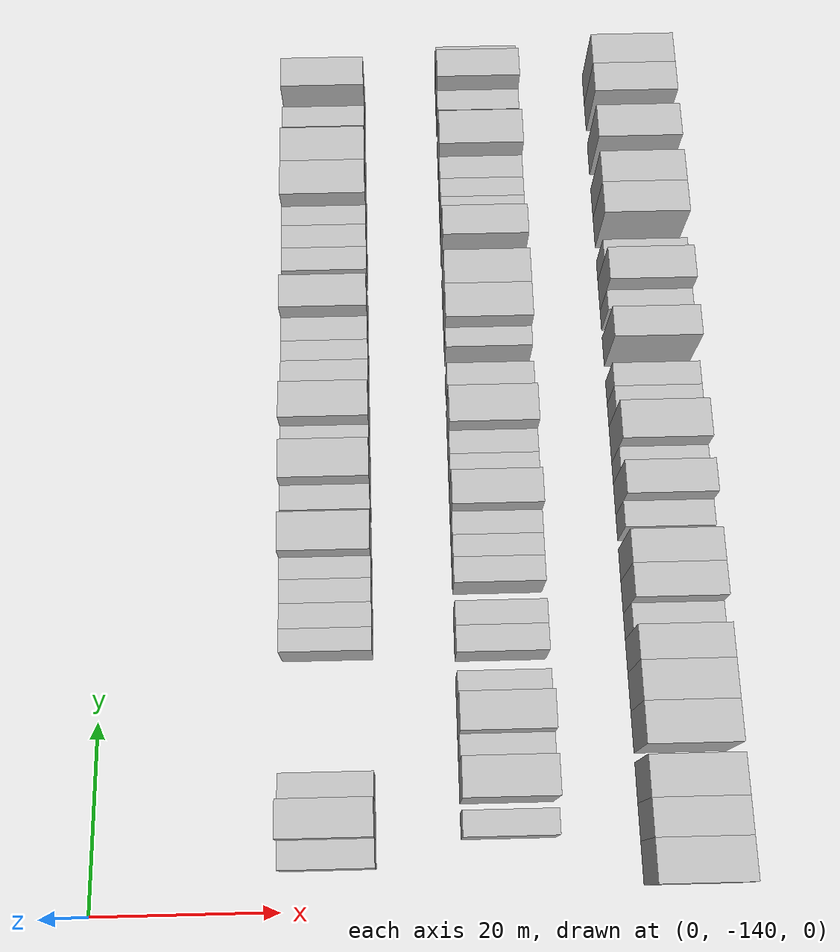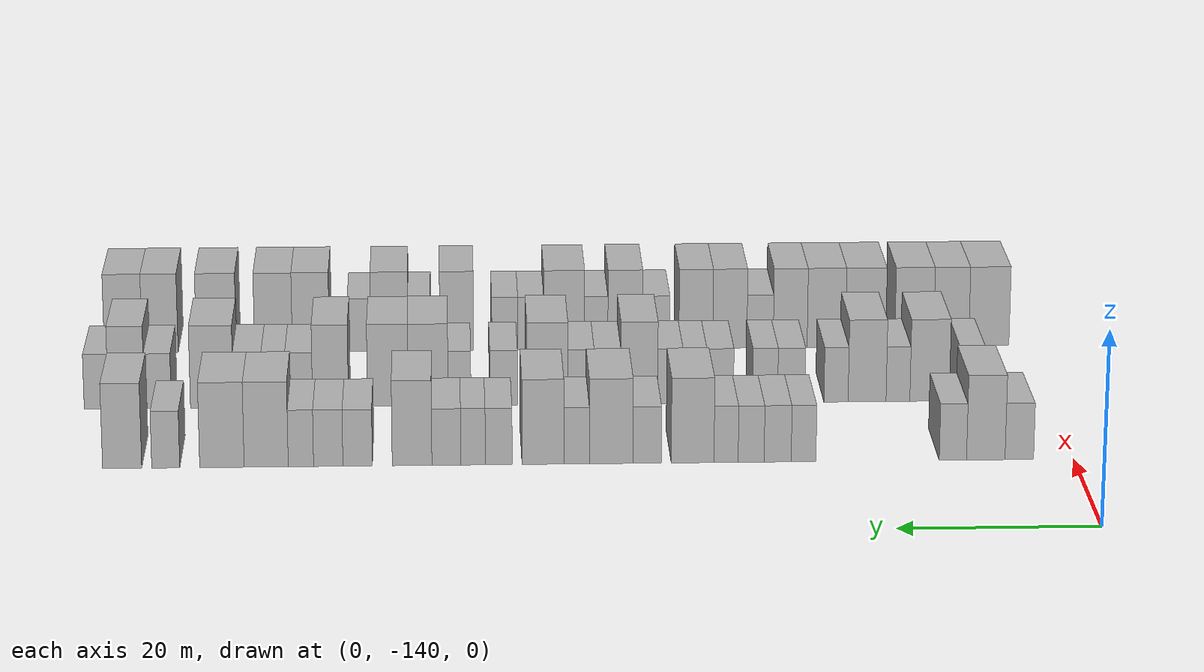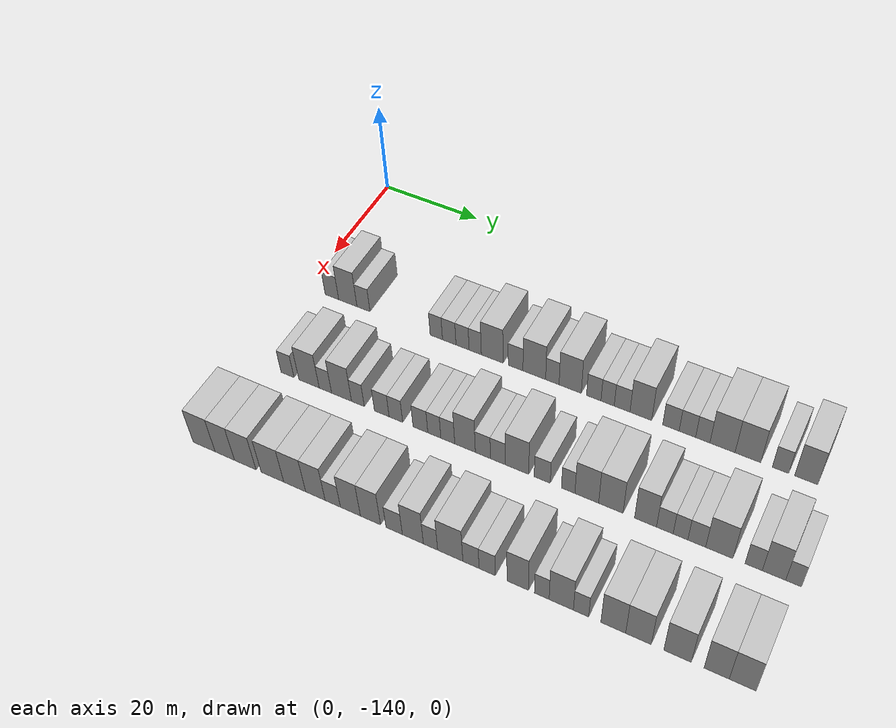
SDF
<sdf version="1.6">
 <world name="default">
  <model name="building_25">
   <static>1</static>
   <pose>25.0000 -134.4918 0 0.000000 0.000000 0.000000</pose>
   <link name="link">
    <pose>0 0 3.00 0 0 0</pose>
    <collision name="collision"><geometry><box><size>10.0000 2.9048 6.0000</size></box></geometry></collision>
    <visual name="visual">
     <cast_shadows>0</cast_shadows>
     <geometry><box><size>10.0000 2.9048 6.0000</size></box></geometry>
     <material>
      <script>
       <uri>model://HANNAS_wall/materials/scripts</uri>
       <uri>model://HANNAS_wall/materials/textures</uri>
       <name>vrc/HANNAS_wall</name>
      </script>
     </material>
    </visual>
   </link>
  </model>
  <model name="building_26">
   <static>1</static>
   <pose>25.0000 -131.0836 0 0.000000 0.000000 0.000000</pose>
   <link name="link">
    <pose>0 0 4.50 0 0 0</pose>
    <collision name="collision"><geometry><box><size>10.0000 3.9116 9.0000</size></box></geometry></collision>
    <visual name="visual">
     <cast_shadows>0</cast_shadows>
     <geometry><box><size>10.0000 3.9116 9.0000</size></box></geometry>
     <material>
      <script>
       <uri>model://HANNAS_wall/materials/scripts</uri>
       <uri>model://HANNAS_wall/materials/textures</uri>
       <name>vrc/HANNAS_wall</name>
      </script>
     </material>
    </visual>
   </link>
  </model>
  <model name="building_27">
   <static>1</static>
   <pose>25.0000 -127.7431 0 0.000000 0.000000 0.000000</pose>
   <link name="link">
    <pose>0 0 3.00 0 0 0</pose>
    <collision name="collision"><geometry><box><size>10.0000 2.7693 6.0000</size></box></geometry></collision>
    <visual name="visual">
     <cast_shadows>0</cast_shadows>
     <geometry><box><size>10.0000 2.7693 6.0000</size></box></geometry>
     <material>
      <script>
       <uri>model://HANNAS_wall/materials/scripts</uri>
       <uri>model://HANNAS_wall/materials/textures</uri>
       <name>vrc/HANNAS_wall</name>
      </script>
     </material>
    </visual>
   </link>
  </model>
  <model name="building_28">
   <static>1</static>
   <pose>25.0000 -112.5981 0 0.000000 0.000000 0.000000</pose>
   <link name="link">
    <pose>0 0 3.00 0 0 0</pose>
    <collision name="collision"><geometry><box><size>10.0000 2.5069 6.0000</size></box></geometry></collision>
    <visual name="visual">
     <cast_shadows>0</cast_shadows>
     <geometry><box><size>10.0000 2.5069 6.0000</size></box></geometry>
     <material>
      <script>
       <uri>model://HANNAS_wall/materials/scripts</uri>
       <uri>model://HANNAS_wall/materials/textures</uri>
       <name>vrc/HANNAS_wall</name>
      </script>
     </material>
    </visual>
   </link>
  </model>
  <model name="building_29">
   <static>1</static>
   <pose>25.0000 -109.9753 0 0.000000 0.000000 0.000000</pose>
   <link name="link">
    <pose>0 0 3.00 0 0 0</pose>
    <collision name="collision"><geometry><box><size>10.0000 2.7387 6.0000</size></box></geometry></collision>
    <visual name="visual">
     <cast_shadows>0</cast_shadows>
     <geometry><box><size>10.0000 2.7387 6.0000</size></box></geometry>
     <material>
      <script>
       <uri>model://HANNAS_wall/materials/scripts</uri>
       <uri>model://HANNAS_wall/materials/textures</uri>
       <name>vrc/HANNAS_wall</name>
      </script>
     </material>
    </visual>
   </link>
  </model>
  <model name="building_30">
   <static>1</static>
   <pose>25.0000 -107.2891 0 0.000000 0.000000 0.000000</pose>
   <link name="link">
    <pose>0 0 3.00 0 0 0</pose>
    <collision name="collision"><geometry><box><size>10.0000 2.6337 6.0000</size></box></geometry></collision>
    <visual name="visual">
     <cast_shadows>0</cast_shadows>
     <geometry><box><size>10.0000 2.6337 6.0000</size></box></geometry>
     <material>
      <script>
       <uri>model://HANNAS_wall/materials/scripts</uri>
       <uri>model://HANNAS_wall/materials/textures</uri>
       <name>vrc/HANNAS_wall</name>
      </script>
     </material>
    </visual>
   </link>
  </model>
  <model name="building_31">
   <static>1</static>
   <pose>25.0000 -104.7487 0 0.000000 0.000000 0.000000</pose>
   <link name="link">
    <pose>0 0 3.00 0 0 0</pose>
    <collision name="collision"><geometry><box><size>10.0000 2.4472 6.0000</size></box></geometry></collision>
    <visual name="visual">
     <cast_shadows>0</cast_shadows>
     <geometry><box><size>10.0000 2.4472 6.0000</size></box></geometry>
     <material>
      <script>
       <uri>model://HANNAS_wall/materials/scripts</uri>
       <uri>model://HANNAS_wall/materials/textures</uri>
       <name>vrc/HANNAS_wall</name>
      </script>
     </material>
    </visual>
   </link>
  </model>
  <model name="building_32">
   <static>1</static>
   <pose>25.0000 -101.3628 0 0.000000 0.000000 0.000000</pose>
   <link name="link">
    <pose>0 0 4.50 0 0 0</pose>
    <collision name="collision"><geometry><box><size>10.0000 4.3246 9.0000</size></box></geometry></collision>
    <visual name="visual">
     <cast_shadows>0</cast_shadows>
     <geometry><box><size>10.0000 4.3246 9.0000</size></box></geometry>
     <material>
      <script>
       <uri>model://HANNAS_wall/materials/scripts</uri>
       <uri>model://HANNAS_wall/materials/textures</uri>
       <name>vrc/HANNAS_wall</name>
      </script>
     </material>
    </visual>
   </link>
  </model>
  <model name="building_33">
   <static>1</static>
   <pose>25.0000 -96.7619 0 0.000000 0.000000 0.000000</pose>
   <link name="link">
    <pose>0 0 3.00 0 0 0</pose>
    <collision name="collision"><geometry><box><size>10.0000 2.8772 6.0000</size></box></geometry></collision>
    <visual name="visual">
     <cast_shadows>0</cast_shadows>
     <geometry><box><size>10.0000 2.8772 6.0000</size></box></geometry>
     <material>
      <script>
       <uri>model://HANNAS_wall/materials/scripts</uri>
       <uri>model://HANNAS_wall/materials/textures</uri>
       <name>vrc/HANNAS_wall</name>
      </script>
     </material>
    </visual>
   </link>
  </model>
  <model name="building_34">
   <static>1</static>
   <pose>25.0000 -93.1212 0 0.000000 0.000000 0.000000</pose>
   <link name="link">
    <pose>0 0 4.50 0 0 0</pose>
    <collision name="collision"><geometry><box><size>10.0000 4.4043 9.0000</size></box></geometry></collision>
    <visual name="visual">
     <cast_shadows>0</cast_shadows>
     <geometry><box><size>10.0000 4.4043 9.0000</size></box></geometry>
     <material>
      <script>
       <uri>model://HANNAS_wall/materials/scripts</uri>
       <uri>model://HANNAS_wall/materials/textures</uri>
       <name>vrc/HANNAS_wall</name>
      </script>
     </material>
    </visual>
   </link>
  </model>
  <model name="building_35">
   <static>1</static>
   <pose>25.0000 -89.6318 0 0.000000 0.000000 0.000000</pose>
   <link name="link">
    <pose>0 0 3.00 0 0 0</pose>
    <collision name="collision"><geometry><box><size>10.0000 2.5744 6.0000</size></box></geometry></collision>
    <visual name="visual">
     <cast_shadows>0</cast_shadows>
     <geometry><box><size>10.0000 2.5744 6.0000</size></box></geometry>
     <material>
      <script>
       <uri>model://HANNAS_wall/materials/scripts</uri>
       <uri>model://HANNAS_wall/materials/textures</uri>
       <name>vrc/HANNAS_wall</name>
      </script>
     </material>
    </visual>
   </link>
  </model>
  <model name="building_36">
   <static>1</static>
   <pose>25.0000 -86.2331 0 0.000000 0.000000 0.000000</pose>
   <link name="link">
    <pose>0 0 4.50 0 0 0</pose>
    <collision name="collision"><geometry><box><size>10.0000 4.2231 9.0000</size></box></geometry></collision>
    <visual name="visual">
     <cast_shadows>0</cast_shadows>
     <geometry><box><size>10.0000 4.2231 9.0000</size></box></geometry>
     <material>
      <script>
       <uri>model://HANNAS_wall/materials/scripts</uri>
       <uri>model://HANNAS_wall/materials/textures</uri>
       <name>vrc/HANNAS_wall</name>
      </script>
     </material>
    </visual>
   </link>
  </model>
  <model name="building_37">
   <static>1</static>
   <pose>25.0000 -81.7671 0 0.000000 0.000000 0.000000</pose>
   <link name="link">
    <pose>0 0 3.00 0 0 0</pose>
    <collision name="collision"><geometry><box><size>10.0000 2.7089 6.0000</size></box></geometry></collision>
    <visual name="visual">
     <cast_shadows>0</cast_shadows>
     <geometry><box><size>10.0000 2.7089 6.0000</size></box></geometry>
     <material>
      <script>
       <uri>model://HANNAS_wall/materials/scripts</uri>
       <uri>model://HANNAS_wall/materials/textures</uri>
       <name>vrc/HANNAS_wall</name>
      </script>
     </material>
    </visual>
   </link>
  </model>
  <model name="building_38">
   <static>1</static>
   <pose>25.0000 -79.1768 0 0.000000 0.000000 0.000000</pose>
   <link name="link">
    <pose>0 0 3.00 0 0 0</pose>
    <collision name="collision"><geometry><box><size>10.0000 2.4715 6.0000</size></box></geometry></collision>
    <visual name="visual">
     <cast_shadows>0</cast_shadows>
     <geometry><box><size>10.0000 2.4715 6.0000</size></box></geometry>
     <material>
      <script>
       <uri>model://HANNAS_wall/materials/scripts</uri>
       <uri>model://HANNAS_wall/materials/textures</uri>
       <name>vrc/HANNAS_wall</name>
      </script>
     </material>
    </visual>
   </link>
  </model>
  <model name="building_39">
   <static>1</static>
   <pose>25.0000 -76.4814 0 0.000000 0.000000 0.000000</pose>
   <link name="link">
    <pose>0 0 3.00 0 0 0</pose>
    <collision name="collision"><geometry><box><size>10.0000 2.9194 6.0000</size></box></geometry></collision>
    <visual name="visual">
     <cast_shadows>0</cast_shadows>
     <geometry><box><size>10.0000 2.9194 6.0000</size></box></geometry>
     <material>
      <script>
       <uri>model://HANNAS_wall/materials/scripts</uri>
       <uri>model://HANNAS_wall/materials/textures</uri>
       <name>vrc/HANNAS_wall</name>
      </script>
     </material>
    </visual>
   </link>
  </model>
  <model name="building_40">
   <static>1</static>
   <pose>25.0000 -73.0210 0 0.000000 0.000000 0.000000</pose>
   <link name="link">
    <pose>0 0 4.50 0 0 0</pose>
    <collision name="collision"><geometry><box><size>10.0000 4.0014 9.0000</size></box></geometry></collision>
    <visual name="visual">
     <cast_shadows>0</cast_shadows>
     <geometry><box><size>10.0000 4.0014 9.0000</size></box></geometry>
     <material>
      <script>
       <uri>model://HANNAS_wall/materials/scripts</uri>
       <uri>model://HANNAS_wall/materials/textures</uri>
       <name>vrc/HANNAS_wall</name>
      </script>
     </material>
    </visual>
   </link>
  </model>
  <model name="building_41">
   <static>1</static>
   <pose>25.0000 -67.5345 0 0.000000 0.000000 0.000000</pose>
   <link name="link">
    <pose>0 0 3.00 0 0 0</pose>
    <collision name="collision"><geometry><box><size>10.0000 2.9716 6.0000</size></box></geometry></collision>
    <visual name="visual">
     <cast_shadows>0</cast_shadows>
     <geometry><box><size>10.0000 2.9716 6.0000</size></box></geometry>
     <material>
      <script>
       <uri>model://HANNAS_wall/materials/scripts</uri>
       <uri>model://HANNAS_wall/materials/textures</uri>
       <name>vrc/HANNAS_wall</name>
      </script>
     </material>
    </visual>
   </link>
  </model>
  <model name="building_42">
   <static>1</static>
   <pose>25.0000 -64.5715 0 0.000000 0.000000 0.000000</pose>
   <link name="link">
    <pose>0 0 3.00 0 0 0</pose>
    <collision name="collision"><geometry><box><size>10.0000 2.9545 6.0000</size></box></geometry></collision>
    <visual name="visual">
     <cast_shadows>0</cast_shadows>
     <geometry><box><size>10.0000 2.9545 6.0000</size></box></geometry>
     <material>
      <script>
       <uri>model://HANNAS_wall/materials/scripts</uri>
       <uri>model://HANNAS_wall/materials/textures</uri>
       <name>vrc/HANNAS_wall</name>
      </script>
     </material>
    </visual>
   </link>
  </model>
  <model name="building_43">
   <static>1</static>
   <pose>25.0000 -61.8195 0 0.000000 0.000000 0.000000</pose>
   <link name="link">
    <pose>0 0 3.00 0 0 0</pose>
    <collision name="collision"><geometry><box><size>10.0000 2.5494 6.0000</size></box></geometry></collision>
    <visual name="visual">
     <cast_shadows>0</cast_shadows>
     <geometry><box><size>10.0000 2.5494 6.0000</size></box></geometry>
     <material>
      <script>
       <uri>model://HANNAS_wall/materials/scripts</uri>
       <uri>model://HANNAS_wall/materials/textures</uri>
       <name>vrc/HANNAS_wall</name>
      </script>
     </material>
    </visual>
   </link>
  </model>
  <model name="building_44">
   <static>1</static>
   <pose>25.0000 -58.3262 0 0.000000 0.000000 0.000000</pose>
   <link name="link">
    <pose>0 0 4.50 0 0 0</pose>
    <collision name="collision"><geometry><box><size>10.0000 4.4372 9.0000</size></box></geometry></collision>
    <visual name="visual">
     <cast_shadows>0</cast_shadows>
     <geometry><box><size>10.0000 4.4372 9.0000</size></box></geometry>
     <material>
      <script>
       <uri>model://HANNAS_wall/materials/scripts</uri>
       <uri>model://HANNAS_wall/materials/textures</uri>
       <name>vrc/HANNAS_wall</name>
      </script>
     </material>
    </visual>
   </link>
  </model>
  <model name="building_45">
   <static>1</static>
   <pose>25.0000 -53.8707 0 0.000000 0.000000 0.000000</pose>
   <link name="link">
    <pose>0 0 4.50 0 0 0</pose>
    <collision name="collision"><geometry><box><size>10.0000 4.4738 9.0000</size></box></geometry></collision>
    <visual name="visual">
     <cast_shadows>0</cast_shadows>
     <geometry><box><size>10.0000 4.4738 9.0000</size></box></geometry>
     <material>
      <script>
       <uri>model://HANNAS_wall/materials/scripts</uri>
       <uri>model://HANNAS_wall/materials/textures</uri>
       <name>vrc/HANNAS_wall</name>
      </script>
     </material>
    </visual>
   </link>
  </model>
  <model name="building_46">
   <static>1</static>
   <pose>25.0000 -48.2226 0 0.000000 0.000000 0.000000</pose>
   <link name="link">
    <pose>0 0 3.00 0 0 0</pose>
    <collision name="collision"><geometry><box><size>10.0000 2.8224 6.0000</size></box></geometry></collision>
    <visual name="visual">
     <cast_shadows>0</cast_shadows>
     <geometry><box><size>10.0000 2.8224 6.0000</size></box></geometry>
     <material>
      <script>
       <uri>model://HANNAS_wall/materials/scripts</uri>
       <uri>model://HANNAS_wall/materials/textures</uri>
       <name>vrc/HANNAS_wall</name>
      </script>
     </material>
    </visual>
   </link>
  </model>
  <model name="building_47">
   <static>1</static>
   <pose>25.0000 -43.8459 0 0.000000 0.000000 0.000000</pose>
   <link name="link">
    <pose>0 0 4.50 0 0 0</pose>
    <collision name="collision"><geometry><box><size>10.0000 3.9311 9.0000</size></box></geometry></collision>
    <visual name="visual">
     <cast_shadows>0</cast_shadows>
     <geometry><box><size>10.0000 3.9311 9.0000</size></box></geometry>
     <material>
      <script>
       <uri>model://HANNAS_wall/materials/scripts</uri>
       <uri>model://HANNAS_wall/materials/textures</uri>
       <name>vrc/HANNAS_wall</name>
      </script>
     </material>
    </visual>
   </link>
  </model>
  <model name="building_150">
   <static>1</static>
   <pose>44.0000 -131.8340 0 0.000000 0.000000 0.000000</pose>
   <link name="link">
    <pose>0 0 3.00 0 0 0</pose>
    <collision name="collision"><geometry><box><size>10.0000 2.6657 6.0000</size></box></geometry></collision>
    <visual name="visual">
     <cast_shadows>0</cast_shadows>
     <geometry><box><size>10.0000 2.6657 6.0000</size></box></geometry>
     <material>
      <script>
       <uri>model://HANNAS_wall/materials/scripts</uri>
       <uri>model://HANNAS_wall/materials/textures</uri>
       <name>vrc/HANNAS_wall</name>
      </script>
     </material>
    </visual>
   </link>
  </model>
  <model name="building_151">
   <static>1</static>
   <pose>44.0000 -127.4227 0 0.000000 0.000000 0.000000</pose>
   <link name="link">
    <pose>0 0 4.50 0 0 0</pose>
    <collision name="collision"><geometry><box><size>10.0000 4.1570 9.0000</size></box></geometry></collision>
    <visual name="visual">
     <cast_shadows>0</cast_shadows>
     <geometry><box><size>10.0000 4.1570 9.0000</size></box></geometry>
     <material>
      <script>
       <uri>model://HANNAS_wall/materials/scripts</uri>
       <uri>model://HANNAS_wall/materials/textures</uri>
       <name>vrc/HANNAS_wall</name>
      </script>
     </material>
    </visual>
   </link>
  </model>
  <model name="building_152">
   <static>1</static>
   <pose>44.0000 -124.0861 0 0.000000 0.000000 0.000000</pose>
   <link name="link">
    <pose>0 0 3.00 0 0 0</pose>
    <collision name="collision"><geometry><box><size>10.0000 2.5161 6.0000</size></box></geometry></collision>
    <visual name="visual">
     <cast_shadows>0</cast_shadows>
     <geometry><box><size>10.0000 2.5161 6.0000</size></box></geometry>
     <material>
      <script>
       <uri>model://HANNAS_wall/materials/scripts</uri>
       <uri>model://HANNAS_wall/materials/textures</uri>
       <name>vrc/HANNAS_wall</name>
      </script>
     </material>
    </visual>
   </link>
  </model>
  <model name="building_153">
   <static>1</static>
   <pose>44.0000 -120.8262 0 0.000000 0.000000 0.000000</pose>
   <link name="link">
    <pose>0 0 4.50 0 0 0</pose>
    <collision name="collision"><geometry><box><size>10.0000 4.0037 9.0000</size></box></geometry></collision>
    <visual name="visual">
     <cast_shadows>0</cast_shadows>
     <geometry><box><size>10.0000 4.0037 9.0000</size></box></geometry>
     <material>
      <script>
       <uri>model://HANNAS_wall/materials/scripts</uri>
       <uri>model://HANNAS_wall/materials/textures</uri>
       <name>vrc/HANNAS_wall</name>
      </script>
     </material>
    </visual>
   </link>
  </model>
  <model name="building_154">
   <static>1</static>
   <pose>44.0000 -117.5496 0 0.000000 0.000000 0.000000</pose>
   <link name="link">
    <pose>0 0 3.00 0 0 0</pose>
    <collision name="collision"><geometry><box><size>10.0000 2.5495 6.0000</size></box></geometry></collision>
    <visual name="visual">
     <cast_shadows>0</cast_shadows>
     <geometry><box><size>10.0000 2.5495 6.0000</size></box></geometry>
     <material>
      <script>
       <uri>model://HANNAS_wall/materials/scripts</uri>
       <uri>model://HANNAS_wall/materials/textures</uri>
       <name>vrc/HANNAS_wall</name>
      </script>
     </material>
    </visual>
   </link>
  </model>
  <model name="building_155">
   <static>1</static>
   <pose>44.0000 -112.8302 0 0.000000 0.000000 0.000000</pose>
   <link name="link">
    <pose>0 0 3.00 0 0 0</pose>
    <collision name="collision"><geometry><box><size>10.0000 2.8893 6.0000</size></box></geometry></collision>
    <visual name="visual">
     <cast_shadows>0</cast_shadows>
     <geometry><box><size>10.0000 2.8893 6.0000</size></box></geometry>
     <material>
      <script>
       <uri>model://HANNAS_wall/materials/scripts</uri>
       <uri>model://HANNAS_wall/materials/textures</uri>
       <name>vrc/HANNAS_wall</name>
      </script>
     </material>
    </visual>
   </link>
  </model>
  <model name="building_156">
   <static>1</static>
   <pose>44.0000 -110.0591 0 0.000000 0.000000 0.000000</pose>
   <link name="link">
    <pose>0 0 3.00 0 0 0</pose>
    <collision name="collision"><geometry><box><size>10.0000 2.6530 6.0000</size></box></geometry></collision>
    <visual name="visual">
     <cast_shadows>0</cast_shadows>
     <geometry><box><size>10.0000 2.6530 6.0000</size></box></geometry>
     <material>
      <script>
       <uri>model://HANNAS_wall/materials/scripts</uri>
       <uri>model://HANNAS_wall/materials/textures</uri>
       <name>vrc/HANNAS_wall</name>
      </script>
     </material>
    </visual>
   </link>
  </model>
  <model name="building_157">
   <static>1</static>
   <pose>44.0000 -105.3105 0 0.000000 0.000000 0.000000</pose>
   <link name="link">
    <pose>0 0 3.00 0 0 0</pose>
    <collision name="collision"><geometry><box><size>10.0000 2.8441 6.0000</size></box></geometry></collision>
    <visual name="visual">
     <cast_shadows>0</cast_shadows>
     <geometry><box><size>10.0000 2.8441 6.0000</size></box></geometry>
     <material>
      <script>
       <uri>model://HANNAS_wall/materials/scripts</uri>
       <uri>model://HANNAS_wall/materials/textures</uri>
       <name>vrc/HANNAS_wall</name>
      </script>
     </material>
    </visual>
   </link>
  </model>
  <model name="building_158">
   <static>1</static>
   <pose>44.0000 -102.6405 0 0.000000 0.000000 0.000000</pose>
   <link name="link">
    <pose>0 0 3.00 0 0 0</pose>
    <collision name="collision"><geometry><box><size>10.0000 2.4960 6.0000</size></box></geometry></collision>
    <visual name="visual">
     <cast_shadows>0</cast_shadows>
     <geometry><box><size>10.0000 2.4960 6.0000</size></box></geometry>
     <material>
      <script>
       <uri>model://HANNAS_wall/materials/scripts</uri>
       <uri>model://HANNAS_wall/materials/textures</uri>
       <name>vrc/HANNAS_wall</name>
      </script>
     </material>
    </visual>
   </link>
  </model>
  <model name="building_159">
   <static>1</static>
   <pose>44.0000 -100.0737 0 0.000000 0.000000 0.000000</pose>
   <link name="link">
    <pose>0 0 3.00 0 0 0</pose>
    <collision name="collision"><geometry><box><size>10.0000 2.6376 6.0000</size></box></geometry></collision>
    <visual name="visual">
     <cast_shadows>0</cast_shadows>
     <geometry><box><size>10.0000 2.6376 6.0000</size></box></geometry>
     <material>
      <script>
       <uri>model://HANNAS_wall/materials/scripts</uri>
       <uri>model://HANNAS_wall/materials/textures</uri>
       <name>vrc/HANNAS_wall</name>
      </script>
     </material>
    </visual>
   </link>
  </model>
  <model name="building_160">
   <static>1</static>
   <pose>44.0000 -96.8140 0 0.000000 0.000000 0.000000</pose>
   <link name="link">
    <pose>0 0 4.50 0 0 0</pose>
    <collision name="collision"><geometry><box><size>10.0000 3.8818 9.0000</size></box></geometry></collision>
    <visual name="visual">
     <cast_shadows>0</cast_shadows>
     <geometry><box><size>10.0000 3.8818 9.0000</size></box></geometry>
     <material>
      <script>
       <uri>model://HANNAS_wall/materials/scripts</uri>
       <uri>model://HANNAS_wall/materials/textures</uri>
       <name>vrc/HANNAS_wall</name>
      </script>
     </material>
    </visual>
   </link>
  </model>
  <model name="building_161">
   <static>1</static>
   <pose>44.0000 -93.4667 0 0.000000 0.000000 0.000000</pose>
   <link name="link">
    <pose>0 0 3.00 0 0 0</pose>
    <collision name="collision"><geometry><box><size>10.0000 2.8129 6.0000</size></box></geometry></collision>
    <visual name="visual">
     <cast_shadows>0</cast_shadows>
     <geometry><box><size>10.0000 2.8129 6.0000</size></box></geometry>
     <material>
      <script>
       <uri>model://HANNAS_wall/materials/scripts</uri>
       <uri>model://HANNAS_wall/materials/textures</uri>
       <name>vrc/HANNAS_wall</name>
      </script>
     </material>
    </visual>
   </link>
  </model>
  <model name="building_162">
   <static>1</static>
   <pose>44.0000 -90.6843 0 0.000000 0.000000 0.000000</pose>
   <link name="link">
    <pose>0 0 3.00 0 0 0</pose>
    <collision name="collision"><geometry><box><size>10.0000 2.7520 6.0000</size></box></geometry></collision>
    <visual name="visual">
     <cast_shadows>0</cast_shadows>
     <geometry><box><size>10.0000 2.7520 6.0000</size></box></geometry>
     <material>
      <script>
       <uri>model://HANNAS_wall/materials/scripts</uri>
       <uri>model://HANNAS_wall/materials/textures</uri>
       <name>vrc/HANNAS_wall</name>
      </script>
     </material>
    </visual>
   </link>
  </model>
  <model name="building_163">
   <static>1</static>
   <pose>44.0000 -87.1613 0 0.000000 0.000000 0.000000</pose>
   <link name="link">
    <pose>0 0 4.50 0 0 0</pose>
    <collision name="collision"><geometry><box><size>10.0000 4.2940 9.0000</size></box></geometry></collision>
    <visual name="visual">
     <cast_shadows>0</cast_shadows>
     <geometry><box><size>10.0000 4.2940 9.0000</size></box></geometry>
     <material>
      <script>
       <uri>model://HANNAS_wall/materials/scripts</uri>
       <uri>model://HANNAS_wall/materials/textures</uri>
       <name>vrc/HANNAS_wall</name>
      </script>
     </material>
    </visual>
   </link>
  </model>
  <model name="building_164">
   <static>1</static>
   <pose>44.0000 -82.5658 0 0.000000 0.000000 0.000000</pose>
   <link name="link">
    <pose>0 0 3.00 0 0 0</pose>
    <collision name="collision"><geometry><box><size>10.0000 2.8969 6.0000</size></box></geometry></collision>
    <visual name="visual">
     <cast_shadows>0</cast_shadows>
     <geometry><box><size>10.0000 2.8969 6.0000</size></box></geometry>
     <material>
      <script>
       <uri>model://HANNAS_wall/materials/scripts</uri>
       <uri>model://HANNAS_wall/materials/textures</uri>
       <name>vrc/HANNAS_wall</name>
      </script>
     </material>
    </visual>
   </link>
  </model>
  <model name="building_165">
   <static>1</static>
   <pose>44.0000 -77.9173 0 0.000000 0.000000 0.000000</pose>
   <link name="link">
    <pose>0 0 3.00 0 0 0</pose>
    <collision name="collision"><geometry><box><size>10.0000 2.4003 6.0000</size></box></geometry></collision>
    <visual name="visual">
     <cast_shadows>0</cast_shadows>
     <geometry><box><size>10.0000 2.4003 6.0000</size></box></geometry>
     <material>
      <script>
       <uri>model://HANNAS_wall/materials/scripts</uri>
       <uri>model://HANNAS_wall/materials/textures</uri>
       <name>vrc/HANNAS_wall</name>
      </script>
     </material>
    </visual>
   </link>
  </model>
  <model name="building_166">
   <static>1</static>
   <pose>44.0000 -74.6192 0 0.000000 0.000000 0.000000</pose>
   <link name="link">
    <pose>0 0 4.50 0 0 0</pose>
    <collision name="collision"><geometry><box><size>10.0000 4.1958 9.0000</size></box></geometry></collision>
    <visual name="visual">
     <cast_shadows>0</cast_shadows>
     <geometry><box><size>10.0000 4.1958 9.0000</size></box></geometry>
     <material>
      <script>
       <uri>model://HANNAS_wall/materials/scripts</uri>
       <uri>model://HANNAS_wall/materials/textures</uri>
       <name>vrc/HANNAS_wall</name>
      </script>
     </material>
    </visual>
   </link>
  </model>
  <model name="building_167">
   <static>1</static>
   <pose>44.0000 -70.3907 0 0.000000 0.000000 0.000000</pose>
   <link name="link">
    <pose>0 0 4.50 0 0 0</pose>
    <collision name="collision"><geometry><box><size>10.0000 4.2611 9.0000</size></box></geometry></collision>
    <visual name="visual">
     <cast_shadows>0</cast_shadows>
     <geometry><box><size>10.0000 4.2611 9.0000</size></box></geometry>
     <material>
      <script>
       <uri>model://HANNAS_wall/materials/scripts</uri>
       <uri>model://HANNAS_wall/materials/textures</uri>
       <name>vrc/HANNAS_wall</name>
      </script>
     </material>
    </visual>
   </link>
  </model>
  <model name="building_168">
   <static>1</static>
   <pose>44.0000 -64.3765 0 0.000000 0.000000 0.000000</pose>
   <link name="link">
    <pose>0 0 4.50 0 0 0</pose>
    <collision name="collision"><geometry><box><size>10.0000 3.7672 9.0000</size></box></geometry></collision>
    <visual name="visual">
     <cast_shadows>0</cast_shadows>
     <geometry><box><size>10.0000 3.7672 9.0000</size></box></geometry>
     <material>
      <script>
       <uri>model://HANNAS_wall/materials/scripts</uri>
       <uri>model://HANNAS_wall/materials/textures</uri>
       <name>vrc/HANNAS_wall</name>
      </script>
     </material>
    </visual>
   </link>
  </model>
  <model name="building_169">
   <static>1</static>
   <pose>44.0000 -61.0801 0 0.000000 0.000000 0.000000</pose>
   <link name="link">
    <pose>0 0 3.00 0 0 0</pose>
    <collision name="collision"><geometry><box><size>10.0000 2.8258 6.0000</size></box></geometry></collision>
    <visual name="visual">
     <cast_shadows>0</cast_shadows>
     <geometry><box><size>10.0000 2.8258 6.0000</size></box></geometry>
     <material>
      <script>
       <uri>model://HANNAS_wall/materials/scripts</uri>
       <uri>model://HANNAS_wall/materials/textures</uri>
       <name>vrc/HANNAS_wall</name>
      </script>
     </material>
    </visual>
   </link>
  </model>
  <model name="building_170">
   <static>1</static>
   <pose>44.0000 -58.4266 0 0.000000 0.000000 0.000000</pose>
   <link name="link">
    <pose>0 0 3.00 0 0 0</pose>
    <collision name="collision"><geometry><box><size>10.0000 2.4812 6.0000</size></box></geometry></collision>
    <visual name="visual">
     <cast_shadows>0</cast_shadows>
     <geometry><box><size>10.0000 2.4812 6.0000</size></box></geometry>
     <material>
      <script>
       <uri>model://HANNAS_wall/materials/scripts</uri>
       <uri>model://HANNAS_wall/materials/textures</uri>
       <name>vrc/HANNAS_wall</name>
      </script>
     </material>
    </visual>
   </link>
  </model>
  <model name="building_171">
   <static>1</static>
   <pose>44.0000 -55.6945 0 0.000000 0.000000 0.000000</pose>
   <link name="link">
    <pose>0 0 3.00 0 0 0</pose>
    <collision name="collision"><geometry><box><size>10.0000 2.9829 6.0000</size></box></geometry></collision>
    <visual name="visual">
     <cast_shadows>0</cast_shadows>
     <geometry><box><size>10.0000 2.9829 6.0000</size></box></geometry>
     <material>
      <script>
       <uri>model://HANNAS_wall/materials/scripts</uri>
       <uri>model://HANNAS_wall/materials/textures</uri>
       <name>vrc/HANNAS_wall</name>
      </script>
     </material>
    </visual>
   </link>
  </model>
  <model name="building_172">
   <static>1</static>
   <pose>44.0000 -51.9547 0 0.000000 0.000000 0.000000</pose>
   <link name="link">
    <pose>0 0 4.50 0 0 0</pose>
    <collision name="collision"><geometry><box><size>10.0000 4.4966 9.0000</size></box></geometry></collision>
    <visual name="visual">
     <cast_shadows>0</cast_shadows>
     <geometry><box><size>10.0000 4.4966 9.0000</size></box></geometry>
     <material>
      <script>
       <uri>model://HANNAS_wall/materials/scripts</uri>
       <uri>model://HANNAS_wall/materials/textures</uri>
       <name>vrc/HANNAS_wall</name>
      </script>
     </material>
    </visual>
   </link>
  </model>
  <model name="building_173">
   <static>1</static>
   <pose>44.0000 -46.3046 0 0.000000 0.000000 0.000000</pose>
   <link name="link">
    <pose>0 0 3.00 0 0 0</pose>
    <collision name="collision"><geometry><box><size>10.0000 2.8037 6.0000</size></box></geometry></collision>
    <visual name="visual">
     <cast_shadows>0</cast_shadows>
     <geometry><box><size>10.0000 2.8037 6.0000</size></box></geometry>
     <material>
      <script>
       <uri>model://HANNAS_wall/materials/scripts</uri>
       <uri>model://HANNAS_wall/materials/textures</uri>
       <name>vrc/HANNAS_wall</name>
      </script>
     </material>
    </visual>
   </link>
  </model>
  <model name="building_174">
   <static>1</static>
   <pose>44.0000 -43.0146 0 0.000000 0.000000 0.000000</pose>
   <link name="link">
    <pose>0 0 4.50 0 0 0</pose>
    <collision name="collision"><geometry><box><size>10.0000 3.7762 9.0000</size></box></geometry></collision>
    <visual name="visual">
     <cast_shadows>0</cast_shadows>
     <geometry><box><size>10.0000 3.7762 9.0000</size></box></geometry>
     <material>
      <script>
       <uri>model://HANNAS_wall/materials/scripts</uri>
       <uri>model://HANNAS_wall/materials/textures</uri>
       <name>vrc/HANNAS_wall</name>
      </script>
     </material>
    </visual>
   </link>
  </model>
  <model name="building_175">
   <static>1</static>
   <pose>44.0000 -39.8606 0 0.000000 0.000000 0.000000</pose>
   <link name="link">
    <pose>0 0 3.00 0 0 0</pose>
    <collision name="collision"><geometry><box><size>10.0000 2.5318 6.0000</size></box></geometry></collision>
    <visual name="visual">
     <cast_shadows>0</cast_shadows>
     <geometry><box><size>10.0000 2.5318 6.0000</size></box></geometry>
     <material>
      <script>
       <uri>model://HANNAS_wall/materials/scripts</uri>
       <uri>model://HANNAS_wall/materials/textures</uri>
       <name>vrc/HANNAS_wall</name>
      </script>
     </material>
    </visual>
   </link>
  </model>
  <model name="building_271">
   <static>1</static>
   <pose>63.0000 -135.9784 0 0.000000 0.000000 0.000000</pose>
   <link name="link">
    <pose>0 0 4.50 0 0 0</pose>
    <collision name="collision"><geometry><box><size>10.0000 4.4263 9.0000</size></box></geometry></collision>
    <visual name="visual">
     <cast_shadows>0</cast_shadows>
     <geometry><box><size>10.0000 4.4263 9.0000</size></box></geometry>
     <material>
      <script>
       <uri>model://HANNAS_wall/materials/scripts</uri>
       <uri>model://HANNAS_wall/materials/textures</uri>
       <name>vrc/HANNAS_wall</name>
      </script>
     </material>
    </visual>
   </link>
  </model>
  <model name="building_272">
   <static>1</static>
   <pose>63.0000 -131.8324 0 0.000000 0.000000 0.000000</pose>
   <link name="link">
    <pose>0 0 4.50 0 0 0</pose>
    <collision name="collision"><geometry><box><size>10.0000 3.8658 9.0000</size></box></geometry></collision>
    <visual name="visual">
     <cast_shadows>0</cast_shadows>
     <geometry><box><size>10.0000 3.8658 9.0000</size></box></geometry>
     <material>
      <script>
       <uri>model://HANNAS_wall/materials/scripts</uri>
       <uri>model://HANNAS_wall/materials/textures</uri>
       <name>vrc/HANNAS_wall</name>
      </script>
     </material>
    </visual>
   </link>
  </model>
  <model name="building_273">
   <static>1</static>
   <pose>63.0000 -127.7714 0 0.000000 0.000000 0.000000</pose>
   <link name="link">
    <pose>0 0 4.50 0 0 0</pose>
    <collision name="collision"><geometry><box><size>10.0000 4.2564 9.0000</size></box></geometry></collision>
    <visual name="visual">
     <cast_shadows>0</cast_shadows>
     <geometry><box><size>10.0000 4.2564 9.0000</size></box></geometry>
     <material>
      <script>
       <uri>model://HANNAS_wall/materials/scripts</uri>
       <uri>model://HANNAS_wall/materials/textures</uri>
       <name>vrc/HANNAS_wall</name>
      </script>
     </material>
    </visual>
   </link>
  </model>
  <model name="building_274">
   <static>1</static>
   <pose>63.0000 -122.4426 0 0.000000 0.000000 0.000000</pose>
   <link name="link">
    <pose>0 0 4.50 0 0 0</pose>
    <collision name="collision"><geometry><box><size>10.0000 4.4012 9.0000</size></box></geometry></collision>
    <visual name="visual">
     <cast_shadows>0</cast_shadows>
     <geometry><box><size>10.0000 4.4012 9.0000</size></box></geometry>
     <material>
      <script>
       <uri>model://HANNAS_wall/materials/scripts</uri>
       <uri>model://HANNAS_wall/materials/textures</uri>
       <name>vrc/HANNAS_wall</name>
      </script>
     </material>
    </visual>
   </link>
  </model>
  <model name="building_275">
   <static>1</static>
   <pose>63.0000 -118.1404 0 0.000000 0.000000 0.000000</pose>
   <link name="link">
    <pose>0 0 4.50 0 0 0</pose>
    <collision name="collision"><geometry><box><size>10.0000 4.2030 9.0000</size></box></geometry></collision>
    <visual name="visual">
     <cast_shadows>0</cast_shadows>
     <geometry><box><size>10.0000 4.2030 9.0000</size></box></geometry>
     <material>
      <script>
       <uri>model://HANNAS_wall/materials/scripts</uri>
       <uri>model://HANNAS_wall/materials/textures</uri>
       <name>vrc/HANNAS_wall</name>
      </script>
     </material>
    </visual>
   </link>
  </model>
  <model name="building_276">
   <static>1</static>
   <pose>63.0000 -114.1832 0 0.000000 0.000000 0.000000</pose>
   <link name="link">
    <pose>0 0 4.50 0 0 0</pose>
    <collision name="collision"><geometry><box><size>10.0000 3.7116 9.0000</size></box></geometry></collision>
    <visual name="visual">
     <cast_shadows>0</cast_shadows>
     <geometry><box><size>10.0000 3.7116 9.0000</size></box></geometry>
     <material>
      <script>
       <uri>model://HANNAS_wall/materials/scripts</uri>
       <uri>model://HANNAS_wall/materials/textures</uri>
       <name>vrc/HANNAS_wall</name>
      </script>
     </material>
    </visual>
   </link>
  </model>
  <model name="building_277">
   <static>1</static>
   <pose>63.0000 -110.8850 0 0.000000 0.000000 0.000000</pose>
   <link name="link">
    <pose>0 0 3.00 0 0 0</pose>
    <collision name="collision"><geometry><box><size>10.0000 2.8848 6.0000</size></box></geometry></collision>
    <visual name="visual">
     <cast_shadows>0</cast_shadows>
     <geometry><box><size>10.0000 2.8848 6.0000</size></box></geometry>
     <material>
      <script>
       <uri>model://HANNAS_wall/materials/scripts</uri>
       <uri>model://HANNAS_wall/materials/textures</uri>
       <name>vrc/HANNAS_wall</name>
      </script>
     </material>
    </visual>
   </link>
  </model>
  <model name="building_278">
   <static>1</static>
   <pose>63.0000 -107.5781 0 0.000000 0.000000 0.000000</pose>
   <link name="link">
    <pose>0 0 4.50 0 0 0</pose>
    <collision name="collision"><geometry><box><size>10.0000 3.7289 9.0000</size></box></geometry></collision>
    <visual name="visual">
     <cast_shadows>0</cast_shadows>
     <geometry><box><size>10.0000 3.7289 9.0000</size></box></geometry>
     <material>
      <script>
       <uri>model://HANNAS_wall/materials/scripts</uri>
       <uri>model://HANNAS_wall/materials/textures</uri>
       <name>vrc/HANNAS_wall</name>
      </script>
     </material>
    </visual>
   </link>
  </model>
  <model name="building_279">
   <static>1</static>
   <pose>63.0000 -103.8552 0 0.000000 0.000000 0.000000</pose>
   <link name="link">
    <pose>0 0 4.50 0 0 0</pose>
    <collision name="collision"><geometry><box><size>10.0000 3.7169 9.0000</size></box></geometry></collision>
    <visual name="visual">
     <cast_shadows>0</cast_shadows>
     <geometry><box><size>10.0000 3.7169 9.0000</size></box></geometry>
     <material>
      <script>
       <uri>model://HANNAS_wall/materials/scripts</uri>
       <uri>model://HANNAS_wall/materials/textures</uri>
       <name>vrc/HANNAS_wall</name>
      </script>
     </material>
    </visual>
   </link>
  </model>
  <model name="building_280">
   <static>1</static>
   <pose>63.0000 -99.5071 0 0.000000 0.000000 0.000000</pose>
   <link name="link">
    <pose>0 0 3.00 0 0 0</pose>
    <collision name="collision"><geometry><box><size>10.0000 2.9791 6.0000</size></box></geometry></collision>
    <visual name="visual">
     <cast_shadows>0</cast_shadows>
     <geometry><box><size>10.0000 2.9791 6.0000</size></box></geometry>
     <material>
      <script>
       <uri>model://HANNAS_wall/materials/scripts</uri>
       <uri>model://HANNAS_wall/materials/textures</uri>
       <name>vrc/HANNAS_wall</name>
      </script>
     </material>
    </visual>
   </link>
  </model>
  <model name="building_281">
   <static>1</static>
   <pose>63.0000 -96.1213 0 0.000000 0.000000 0.000000</pose>
   <link name="link">
    <pose>0 0 4.50 0 0 0</pose>
    <collision name="collision"><geometry><box><size>10.0000 3.7927 9.0000</size></box></geometry></collision>
    <visual name="visual">
     <cast_shadows>0</cast_shadows>
     <geometry><box><size>10.0000 3.7927 9.0000</size></box></geometry>
     <material>
      <script>
       <uri>model://HANNAS_wall/materials/scripts</uri>
       <uri>model://HANNAS_wall/materials/textures</uri>
       <name>vrc/HANNAS_wall</name>
      </script>
     </material>
    </visual>
   </link>
  </model>
  <model name="building_282">
   <static>1</static>
   <pose>63.0000 -92.9554 0 0.000000 0.000000 0.000000</pose>
   <link name="link">
    <pose>0 0 3.00 0 0 0</pose>
    <collision name="collision"><geometry><box><size>10.0000 2.5391 6.0000</size></box></geometry></collision>
    <visual name="visual">
     <cast_shadows>0</cast_shadows>
     <geometry><box><size>10.0000 2.5391 6.0000</size></box></geometry>
     <material>
      <script>
       <uri>model://HANNAS_wall/materials/scripts</uri>
       <uri>model://HANNAS_wall/materials/textures</uri>
       <name>vrc/HANNAS_wall</name>
      </script>
     </material>
    </visual>
   </link>
  </model>
  <model name="building_283">
   <static>1</static>
   <pose>63.0000 -89.4563 0 0.000000 0.000000 0.000000</pose>
   <link name="link">
    <pose>0 0 4.50 0 0 0</pose>
    <collision name="collision"><geometry><box><size>10.0000 4.4591 9.0000</size></box></geometry></collision>
    <visual name="visual">
     <cast_shadows>0</cast_shadows>
     <geometry><box><size>10.0000 4.4591 9.0000</size></box></geometry>
     <material>
      <script>
       <uri>model://HANNAS_wall/materials/scripts</uri>
       <uri>model://HANNAS_wall/materials/textures</uri>
       <name>vrc/HANNAS_wall</name>
      </script>
     </material>
    </visual>
   </link>
  </model>
  <model name="building_284">
   <static>1</static>
   <pose>63.0000 -85.8095 0 0.000000 0.000000 0.000000</pose>
   <link name="link">
    <pose>0 0 3.00 0 0 0</pose>
    <collision name="collision"><geometry><box><size>10.0000 2.8346 6.0000</size></box></geometry></collision>
    <visual name="visual">
     <cast_shadows>0</cast_shadows>
     <geometry><box><size>10.0000 2.8346 6.0000</size></box></geometry>
     <material>
      <script>
       <uri>model://HANNAS_wall/materials/scripts</uri>
       <uri>model://HANNAS_wall/materials/textures</uri>
       <name>vrc/HANNAS_wall</name>
      </script>
     </material>
    </visual>
   </link>
  </model>
  <model name="building_285">
   <static>1</static>
   <pose>63.0000 -82.9747 0 0.000000 0.000000 0.000000</pose>
   <link name="link">
    <pose>0 0 3.00 0 0 0</pose>
    <collision name="collision"><geometry><box><size>10.0000 2.8349 6.0000</size></box></geometry></collision>
    <visual name="visual">
     <cast_shadows>0</cast_shadows>
     <geometry><box><size>10.0000 2.8349 6.0000</size></box></geometry>
     <material>
      <script>
       <uri>model://HANNAS_wall/materials/scripts</uri>
       <uri>model://HANNAS_wall/materials/textures</uri>
       <name>vrc/HANNAS_wall</name>
      </script>
     </material>
    </visual>
   </link>
  </model>
  <model name="building_286">
   <static>1</static>
   <pose>63.0000 -77.7177 0 0.000000 0.000000 0.000000</pose>
   <link name="link">
    <pose>0 0 4.50 0 0 0</pose>
    <collision name="collision"><geometry><box><size>10.0000 3.6792 9.0000</size></box></geometry></collision>
    <visual name="visual">
     <cast_shadows>0</cast_shadows>
     <geometry><box><size>10.0000 3.6792 9.0000</size></box></geometry>
     <material>
      <script>
       <uri>model://HANNAS_wall/materials/scripts</uri>
       <uri>model://HANNAS_wall/materials/textures</uri>
       <name>vrc/HANNAS_wall</name>
      </script>
     </material>
    </visual>
   </link>
  </model>
  <model name="building_287">
   <static>1</static>
   <pose>63.0000 -73.6431 0 0.000000 0.000000 0.000000</pose>
   <link name="link">
    <pose>0 0 3.00 0 0 0</pose>
    <collision name="collision"><geometry><box><size>10.0000 2.4700 6.0000</size></box></geometry></collision>
    <visual name="visual">
     <cast_shadows>0</cast_shadows>
     <geometry><box><size>10.0000 2.4700 6.0000</size></box></geometry>
     <material>
      <script>
       <uri>model://HANNAS_wall/materials/scripts</uri>
       <uri>model://HANNAS_wall/materials/textures</uri>
       <name>vrc/HANNAS_wall</name>
      </script>
     </material>
    </visual>
   </link>
  </model>
  <model name="building_288">
   <static>1</static>
   <pose>63.0000 -70.3818 0 0.000000 0.000000 0.000000</pose>
   <link name="link">
    <pose>0 0 4.50 0 0 0</pose>
    <collision name="collision"><geometry><box><size>10.0000 4.0526 9.0000</size></box></geometry></collision>
    <visual name="visual">
     <cast_shadows>0</cast_shadows>
     <geometry><box><size>10.0000 4.0526 9.0000</size></box></geometry>
     <material>
      <script>
       <uri>model://HANNAS_wall/materials/scripts</uri>
       <uri>model://HANNAS_wall/materials/textures</uri>
       <name>vrc/HANNAS_wall</name>
      </script>
     </material>
    </visual>
   </link>
  </model>
  <model name="building_289">
   <static>1</static>
   <pose>63.0000 -67.0928 0 0.000000 0.000000 0.000000</pose>
   <link name="link">
    <pose>0 0 3.00 0 0 0</pose>
    <collision name="collision"><geometry><box><size>10.0000 2.5256 6.0000</size></box></geometry></collision>
    <visual name="visual">
     <cast_shadows>0</cast_shadows>
     <geometry><box><size>10.0000 2.5256 6.0000</size></box></geometry>
     <material>
      <script>
       <uri>model://HANNAS_wall/materials/scripts</uri>
       <uri>model://HANNAS_wall/materials/textures</uri>
       <name>vrc/HANNAS_wall</name>
      </script>
     </material>
    </visual>
   </link>
  </model>
  <model name="building_290">
   <static>1</static>
   <pose>63.0000 -61.8114 0 0.000000 0.000000 0.000000</pose>
   <link name="link">
    <pose>0 0 4.50 0 0 0</pose>
    <collision name="collision"><geometry><box><size>10.0000 4.0371 9.0000</size></box></geometry></collision>
    <visual name="visual">
     <cast_shadows>0</cast_shadows>
     <geometry><box><size>10.0000 4.0371 9.0000</size></box></geometry>
     <material>
      <script>
       <uri>model://HANNAS_wall/materials/scripts</uri>
       <uri>model://HANNAS_wall/materials/textures</uri>
       <name>vrc/HANNAS_wall</name>
      </script>
     </material>
    </visual>
   </link>
  </model>
  <model name="building_291">
   <static>1</static>
   <pose>63.0000 -57.7391 0 0.000000 0.000000 0.000000</pose>
   <link name="link">
    <pose>0 0 4.50 0 0 0</pose>
    <collision name="collision"><geometry><box><size>10.0000 4.1076 9.0000</size></box></geometry></collision>
    <visual name="visual">
     <cast_shadows>0</cast_shadows>
     <geometry><box><size>10.0000 4.1076 9.0000</size></box></geometry>
     <material>
      <script>
       <uri>model://HANNAS_wall/materials/scripts</uri>
       <uri>model://HANNAS_wall/materials/textures</uri>
       <name>vrc/HANNAS_wall</name>
      </script>
     </material>
    </visual>
   </link>
  </model>
  <model name="building_292">
   <static>1</static>
   <pose>63.0000 -51.5210 0 0.000000 0.000000 0.000000</pose>
   <link name="link">
    <pose>0 0 4.50 0 0 0</pose>
    <collision name="collision"><geometry><box><size>10.0000 4.3284 9.0000</size></box></geometry></collision>
    <visual name="visual">
     <cast_shadows>0</cast_shadows>
     <geometry><box><size>10.0000 4.3284 9.0000</size></box></geometry>
     <material>
      <script>
       <uri>model://HANNAS_wall/materials/scripts</uri>
       <uri>model://HANNAS_wall/materials/textures</uri>
       <name>vrc/HANNAS_wall</name>
      </script>
     </material>
    </visual>
   </link>
  </model>
  <model name="building_293">
   <static>1</static>
   <pose>63.0000 -45.4049 0 0.000000 0.000000 0.000000</pose>
   <link name="link">
    <pose>0 0 4.50 0 0 0</pose>
    <collision name="collision"><geometry><box><size>10.0000 3.9037 9.0000</size></box></geometry></collision>
    <visual name="visual">
     <cast_shadows>0</cast_shadows>
     <geometry><box><size>10.0000 3.9037 9.0000</size></box></geometry>
     <material>
      <script>
       <uri>model://HANNAS_wall/materials/scripts</uri>
       <uri>model://HANNAS_wall/materials/textures</uri>
       <name>vrc/HANNAS_wall</name>
      </script>
     </material>
    </visual>
   </link>
  </model>
  <model name="building_294">
   <static>1</static>
   <pose>63.0000 -41.4032 0 0.000000 0.000000 0.000000</pose>
   <link name="link">
    <pose>0 0 4.50 0 0 0</pose>
    <collision name="collision"><geometry><box><size>10.0000 4.0997 9.0000</size></box></geometry></collision>
    <visual name="visual">
     <cast_shadows>0</cast_shadows>
     <geometry><box><size>10.0000 4.0997 9.0000</size></box></geometry>
     <material>
      <script>
       <uri>model://HANNAS_wall/materials/scripts</uri>
       <uri>model://HANNAS_wall/materials/textures</uri>
       <name>vrc/HANNAS_wall</name>
      </script>
     </material>
    </visual>
   </link>
  </model>
 </world>
</sdf>
